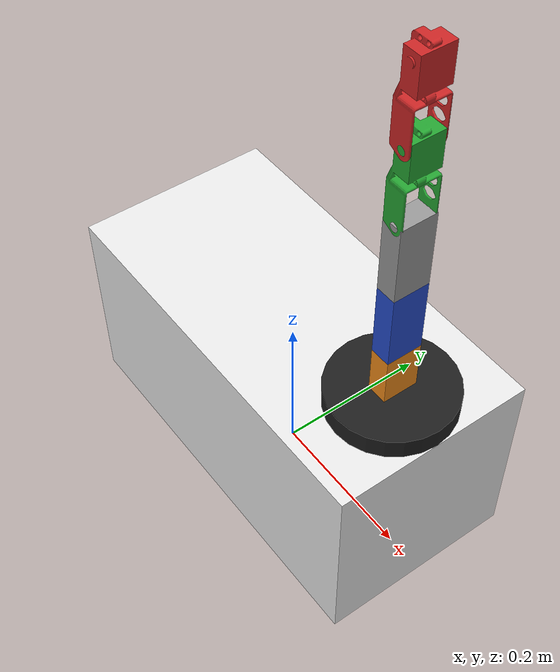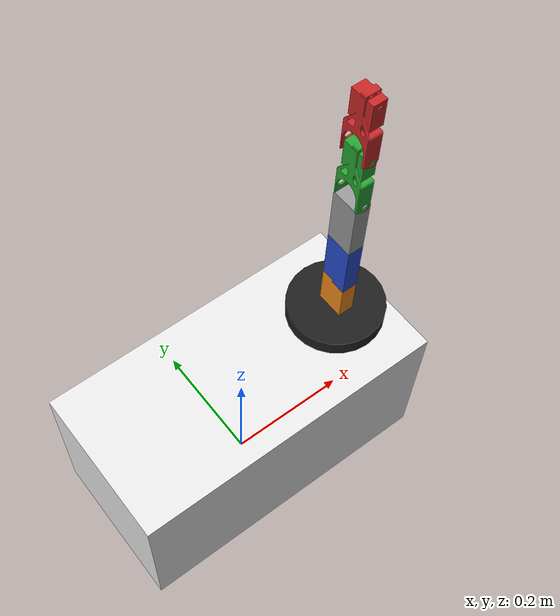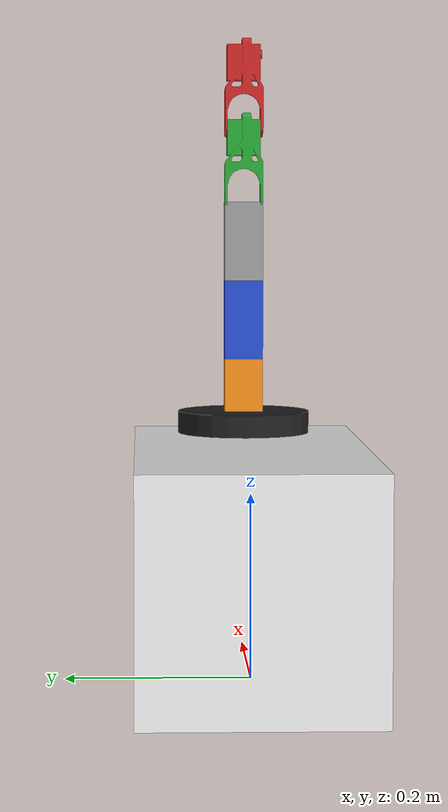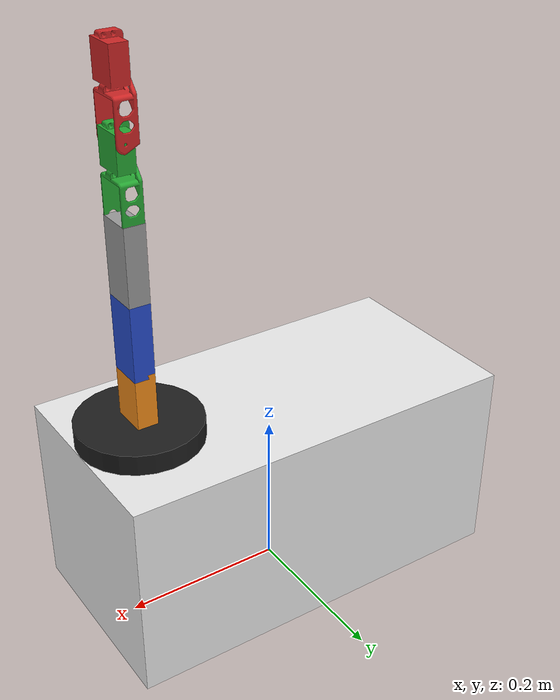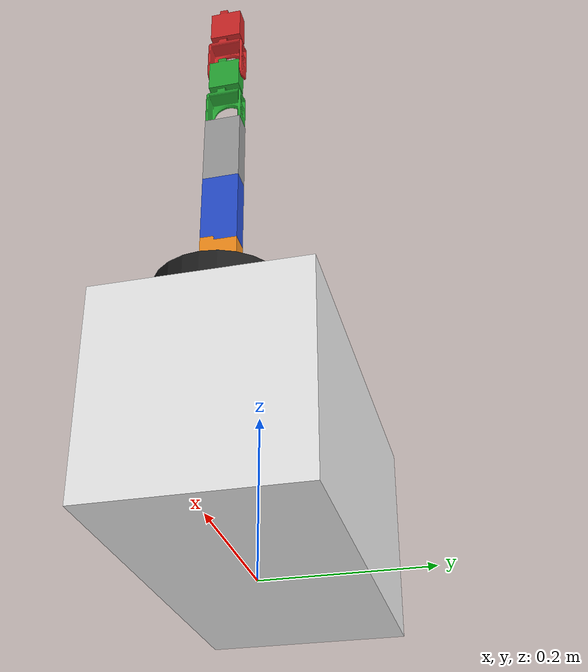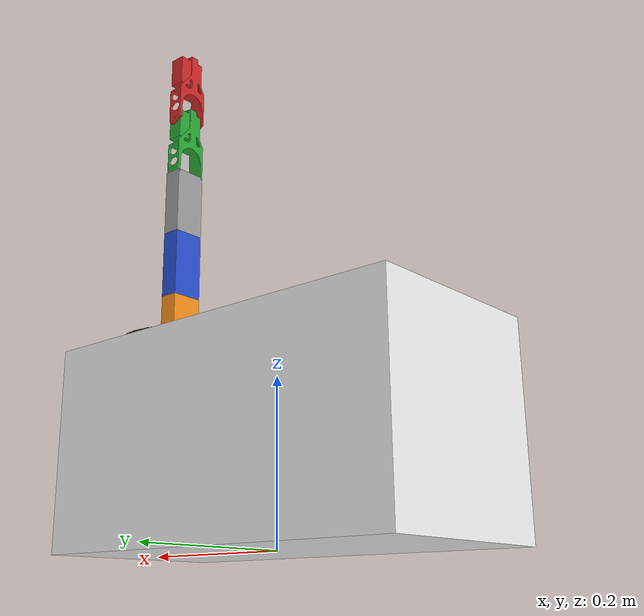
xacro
<?xml version="1.0"?>
<!-- 5 DOF Revolute Manipulator -->
<robot xmlns:xacro="http://www.ros.org/wiki/xacro" name="rarm" >

  <xacro:property name="PI" value="3.1415926535897931"/>
  <xacro:property name="mass" value="1" />       <!-- arbitrary value for mass -->
  <xacro:property name="b_length" value="0.5" /> <!-- base length -->
  <xacro:property name="b_width" value="0.25" />  <!-- base width -->
  <xacro:property name="b_height" value="0.25" /> <!-- base height -->

  <xacro:property name="length" value="0.09" />   <!-- links length -->
  <xacro:property name="width" value="0.0436" />  <!-- links width -->
  <xacro:property name="height" value="0.025" />  <!-- links height -->
  <xacro:property name="radius" value="0.075" />  <!-- links radius -->

  <!-- Import all Gazebo-customization elements, including Gazebo colors -->
  <xacro:include filename="$(find rarm_description)/urdf/rarm.gazebo" />

  <!-- Used for fixing robot to Gazebo 'base_link' -->
  <link name="world"/>

  <!-- Base Link -->
  <link name="base">
    <collision>
      <origin xyz="0 0 ${b_height/2}" rpy="0 0 0"/>
      <geometry>
	<box size="${b_length} ${b_width} ${b_height}"/>
      </geometry>
    </collision>

    <visual>
      <origin xyz="0 0 ${b_height/2}" rpy="0 0 0"/>
      <geometry>
	<box size="${b_length} ${b_width} ${b_height}"/>
      </geometry>
    </visual>

    <inertial>
      <origin xyz="0 0 ${b_height/2}" rpy="0 0 0"/>
      <mass value="${mass}"/>
      <inertia
	  ixx="1.0" ixy="0.0" ixz="0.0"
	  iyy="1.0" iyz="0.0"
	  izz="1.0"/>
    </inertial>
  </link>

  <joint name="fixed1" type="fixed">
    <parent link="world"/>
    <child link="base"/>
  </joint>

  <link name="link0">
    <collision>
    <origin xyz="0 0 0" rpy="0 0 0"/>
      <geometry>
        <cylinder radius="${radius}" length=".05"/>
      </geometry>
    </collision>

    <visual>
      <origin xyz="0 0 0" rpy="0 0 0"/>
      <geometry>
	<cylinder radius="${radius}" length="0.05"/>
      </geometry>
    </visual>

    <inertial>
      <origin xyz="0 0 0" rpy="0 0 0"/>
      <mass value="${mass}"/>
      <inertia
	  ixx="1.0" ixy="0.0" ixz="0.0"
	  iyy="1.0" iyz="0.0"
	  izz="1.0"/>
    </inertial>
  </link>

  <joint name="fixed2" type="fixed">
    <axis xyz="0 0 1"/>
    <parent link="base"/>
    <child link="link0"/>
    <origin xyz="${b_length/2 - radius} 0 ${b_height}" rpy="0 0 0"/>
    <!-- limit effort="100" velocity="100" / -->
    <!-- joint_properties damping="0.0" friction="0.0" / -->
  </joint>

  <link name="link1">
    <collision>
      <origin xyz="0 0 0" rpy="0 ${PI/2} 0"/>
      <geometry>
	<box size="${length} ${width} ${height}"/>
      </geometry>
    </collision>

    <visual>
      <origin xyz="0 0 0" rpy="0 ${PI/2} 0"/>
      <geometry>
	<box size="${length} ${width} ${height}"/>
      </geometry>
    </visual>

    <inertial>
      <origin xyz="0 0 0" rpy="0 ${PI/2} 0"/>
      <mass value="${mass}"/>
      <inertia
	  ixx="1.0" ixy="0.0" ixz="0.0"
	  iyy="1.0" iyz="0.0"
	  izz="1.0"/>
    </inertial>
  </link>

  <joint name="joint1" type="revolute">
    <axis xyz="0 0 1"/>
    <parent link="link0"/>
    <child link="link1"/>
    <origin xyz="0 0 ${length/2}" rpy="0 0 0"/>
    <limit lower="${-pi*3/4}" upper="${pi*3/4}" effort="1000" velocity="10" />
    <joint_properties damping="0.0" friction="0.0" />
  </joint>

  <link name="link2">
    <collision>
      <origin xyz="${length/2} 0 0" rpy="${PI/2} 0 0"/>
      <geometry>
	<box size="${length} ${width} ${height}"/>
      </geometry>
    </collision>

    <visual>
      <origin xyz="${length/2} 0 0" rpy="${PI/2} 0 0"/>
      <geometry>
	<box size="${length} ${width} ${height}"/>
      </geometry>
    </visual>

    <inertial>
      <origin xyz="${length/2} 0 0" rpy="${PI/2} 0 0"/>
      <mass value="${mass}"/>
      <inertia
	  ixx="1.0" ixy="0.0" ixz="0.0"
	  iyy="1.0" iyz="0.0"
	  izz="1.0"/>
    </inertial>
  </link>

  <joint name="joint2" type="revolute">
    <axis xyz="0 0 1"/>
    <parent link="link1"/>
    <child link="link2"/>
    <origin xyz="0 0 ${length - 0.05}" rpy="${-PI/2} ${-PI/2} 0"/>
    <limit lower="${-pi*3/4}" upper="${pi*3/4}" effort="1000" velocity="10" />
    <joint_properties damping="0.0" friction="0.0" />
  </joint>

  <link name="link3">
    <collision>
      <origin xyz="${length/2} 0 0" rpy="${PI/2} 0 0"/>
      <geometry>
	<box size="${length} ${width} ${height}"/>
      </geometry>
    </collision>

    <visual>
      <origin xyz="${length/2} 0 0" rpy="${PI/2} 0 0"/>
      <geometry>
	<box size="${length} ${width} ${height}"/>
      </geometry>
    </visual>

    <inertial>
      <origin xyz="${length/2} 0 0" rpy="${PI/2} 0 0"/>
      <mass value="${mass}"/>
      <inertia
	  ixx="1.0" ixy="0.0" ixz="0.0"
	  iyy="1.0" iyz="0.0"
	  izz="1.0"/>
    </inertial>
  </link>

  <joint name="joint3" type="revolute">
    <axis xyz="0 0 1"/>
    <parent link="link2"/>
    <child link="link3"/>
    <origin xyz="${length} 0 0" rpy="0 0 0"/>
    <limit lower="${-pi*3/4}" upper="${pi*3/4}" effort="1000" velocity="10" />
    <joint_properties damping="0.0" friction="0.0" />
  </joint>

  <link name="link4">
    <collision>
      <origin xyz="${length/2} 0 0" rpy="${PI/2} 0 0"/>
      <geometry>
	<box size="${length} ${width} ${height}"/>
      </geometry>
    </collision>

    <visual>
      <origin xyz="${length/2} 0 0" rpy="${PI/2} 0 0"/>
      <geometry>
	<!-- box size="${length} ${width} ${height}"/ -->
	<mesh filename="package://rarm_description/meshes/links.dae" scale="0.001 0.001 0.001"/>
      </geometry>
    </visual>

    <inertial>
      <origin xyz="${length/2} 0 0" rpy="${PI/2} 0 0"/>
      <mass value="${mass}"/>
      <inertia
	  ixx="1.0" ixy="0.0" ixz="0.0"
	  iyy="1.0" iyz="0.0"
	  izz="1.0"/>
    </inertial>
  </link>

  <joint name="joint4" type="revolute">
    <axis xyz="0 0 1"/>
    <parent link="link3"/>
    <child link="link4"/>
    <origin xyz="${length} 0 0" rpy="0 0 0"/>
    <limit lower="${-pi*3/4}" upper="${pi*3/4}" effort="1000" velocity="10" />
    <joint_properties damping="0.0" friction="0.0" />
  </joint>

  <link name="link5">
    <collision>
      <origin xyz="${length/2} 0 0" rpy="${PI/2} 0 0"/>
      <geometry>
	<box size="${length} ${width} ${height}"/>
      </geometry>
    </collision>

    <visual>
      <origin xyz="${length/2 -0.005} 0 0" rpy="${PI/2} 0 0"/>
      <geometry>
	<!-- box size="${length} ${width} ${height}"/ -->
        <mesh filename="package://rarm_description/meshes/links.dae" scale="0.001 0.001 0.001"/>
      </geometry>
    </visual>

    <inertial>
      <origin xyz="${length/2} 0 0" rpy="${PI/2} 0 0"/>
      <mass value="${mass}"/>
      <inertia
	  ixx="1.0" ixy="0.0" ixz="0.0"
	  iyy="1.0" iyz="0.0"
	  izz="1.0"/>
    </inertial>
  </link>

  <joint name="joint5" type="revolute">
    <axis xyz="0 0 1"/>
    <parent link="link4"/>
    <child link="link5"/>
    <origin xyz="${length} 0 0" rpy="0 0 0"/>
    <limit lower="${-pi*3/4}" upper="${pi*3/4}" effort="1000" velocity="10" />
    <joint_properties damping="0.0" friction="0.0" />
  </joint>

  <transmission name="tran1">
    <type>transmission_interface/SimpleTransmission</type>
    <joint name="joint1">
      <hardwareInterface>hardware_interface/EffortJointInterface</hardwareInterface>
    </joint>
    <actuator name="motor1">
      <hardwareInterface>hardware_interface/EffortJointInterface</hardwareInterface>
      <mechanicalReduction>1</mechanicalReduction>
    </actuator>
  </transmission>

  <transmission name="tran2">
    <type>transmission_interface/SimpleTransmission</type>
    <joint name="joint2">
      <hardwareInterface>hardware_interface/EffortJointInterface</hardwareInterface>
    </joint>
    <actuator name="motor2">
      <hardwareInterface>hardware_interface/EffortJointInterface</hardwareInterface>
      <mechanicalReduction>1</mechanicalReduction>
    </actuator>
  </transmission>

  <transmission name="tran3">
    <type>transmission_interface/SimpleTransmission</type>
    <joint name="joint3">
      <hardwareInterface>hardware_interface/EffortJointInterface</hardwareInterface>
    </joint>
    <actuator name="motor3">
      <hardwareInterface>hardware_interface/EffortJointInterface</hardwareInterface>
      <mechanicalReduction>1</mechanicalReduction>
    </actuator>
  </transmission>

  <transmission name="tran4">
    <type>transmission_interface/SimpleTransmission</type>
    <joint name="joint4">
      <hardwareInterface>hardware_interface/EffortJointInterface</hardwareInterface>
    </joint>
    <actuator name="motor4">
      <hardwareInterface>hardware_interface/EffortJointInterface</hardwareInterface>
      <mechanicalReduction>1</mechanicalReduction>
    </actuator>
  </transmission>

  <transmission name="tran5">
    <type>transmission_interface/SimpleTransmission</type>
    <joint name="joint5">
      <hardwareInterface>hardware_interface/EffortJointInterface</hardwareInterface>
    </joint>
    <actuator name="motor5">
      <hardwareInterface>hardware_interface/EffortJointInterface</hardwareInterface>
      <mechanicalReduction>1</mechanicalReduction>
    </actuator>
  </transmission>

</robot>
